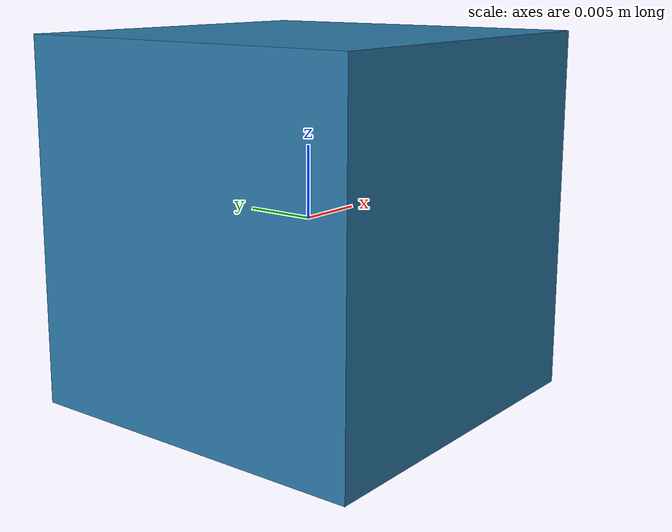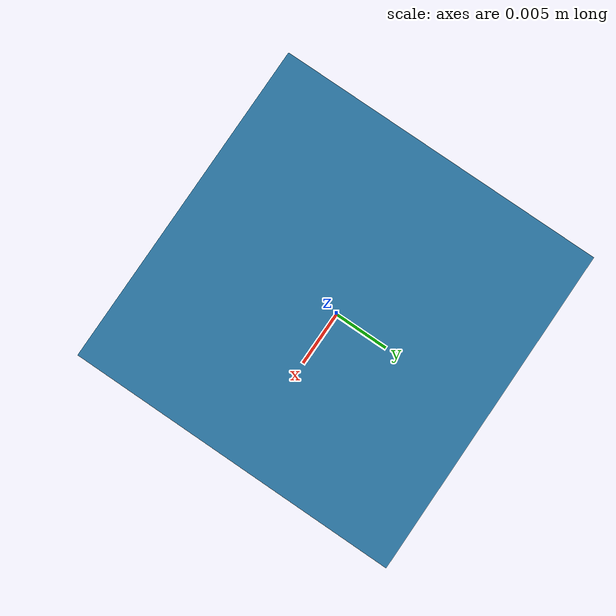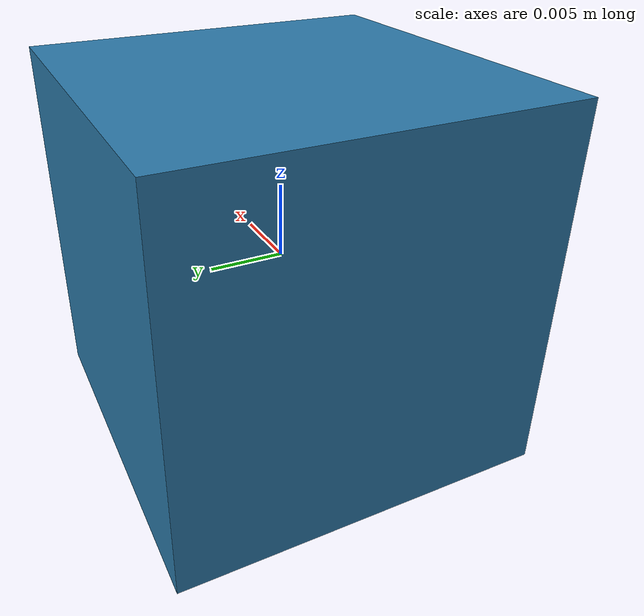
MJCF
<mujoco model="brick">
  <compiler angle="radian"/>
  <asset>
    <material name="brick_pla" rgba="0.17 0.474 0.662 1" specular="0.1" shininess="0.1"/>
  </asset>
  <worldbody>
    <body name="brick">
      <freejoint name="free"/>
      <geom name="geom" type="box" size="0.0125 0.0125 0.0125" density="640"
            material="brick_pla" friction="1.5 0.01 0.0001" solref="0.01 1" solimp="0.998 0.998 0.001"/>
    </body>
  </worldbody>
</mujoco>
